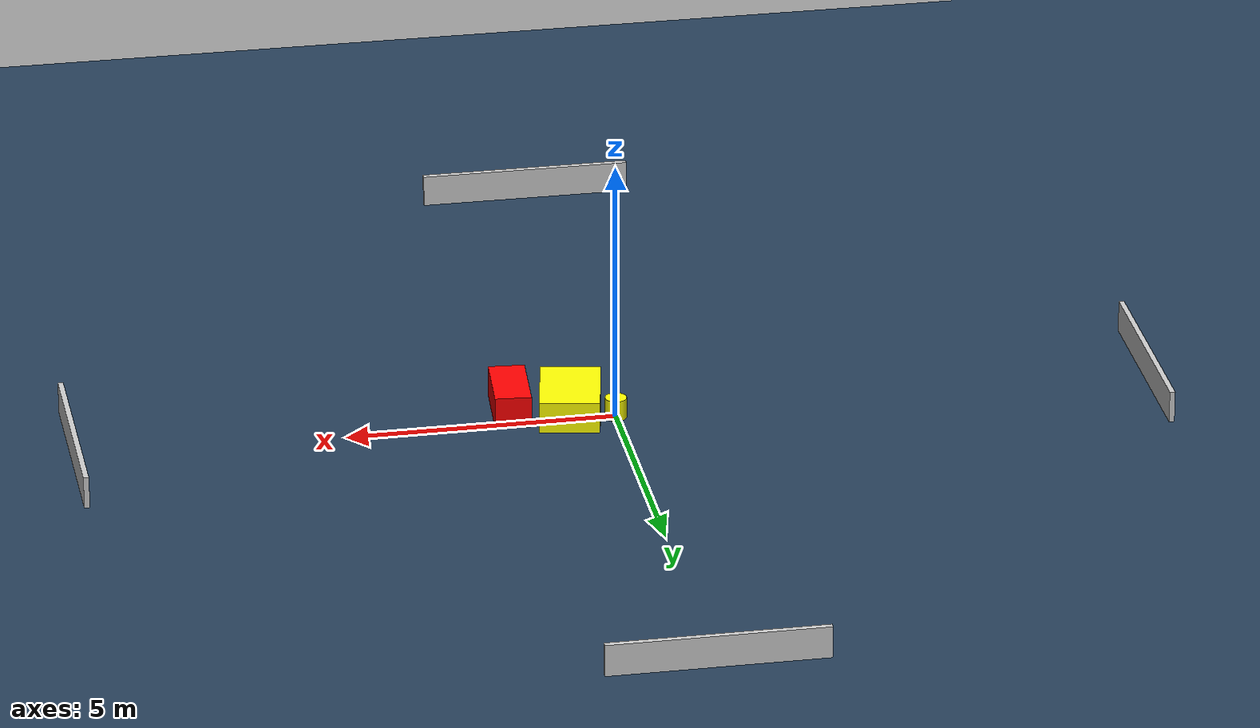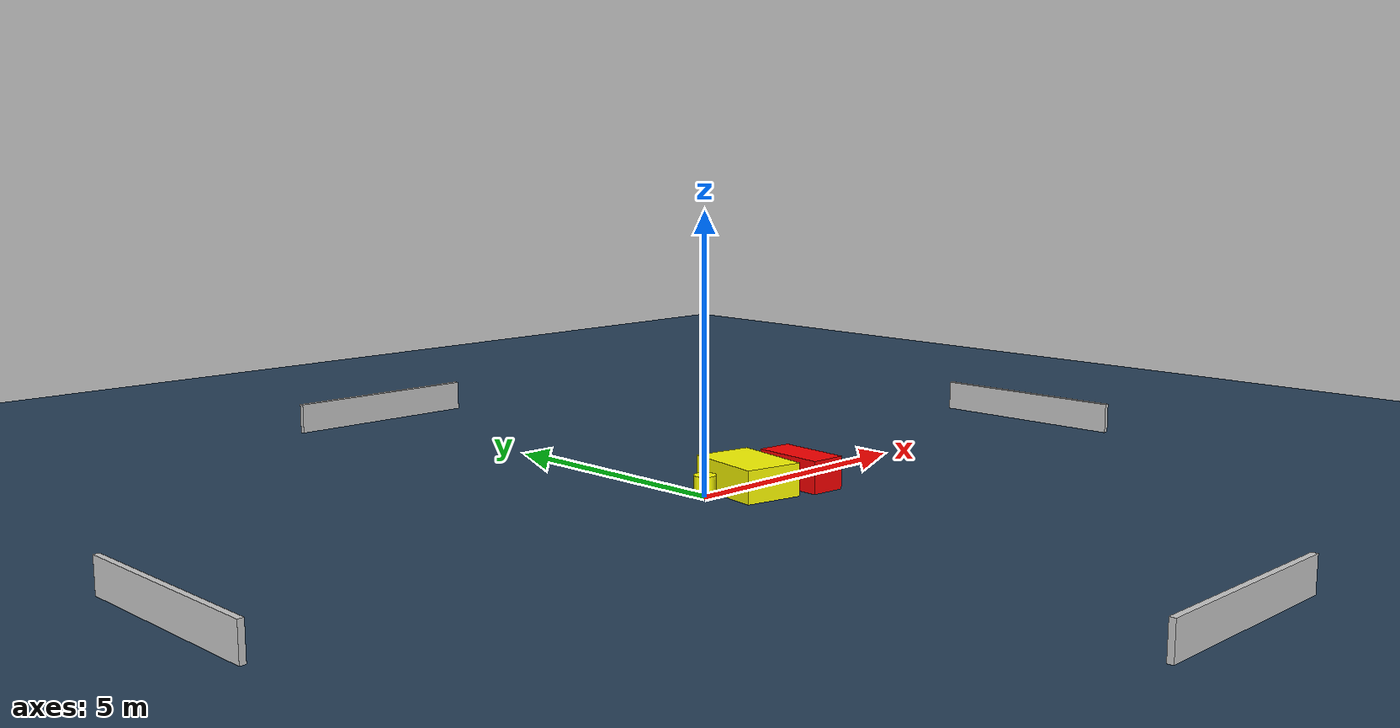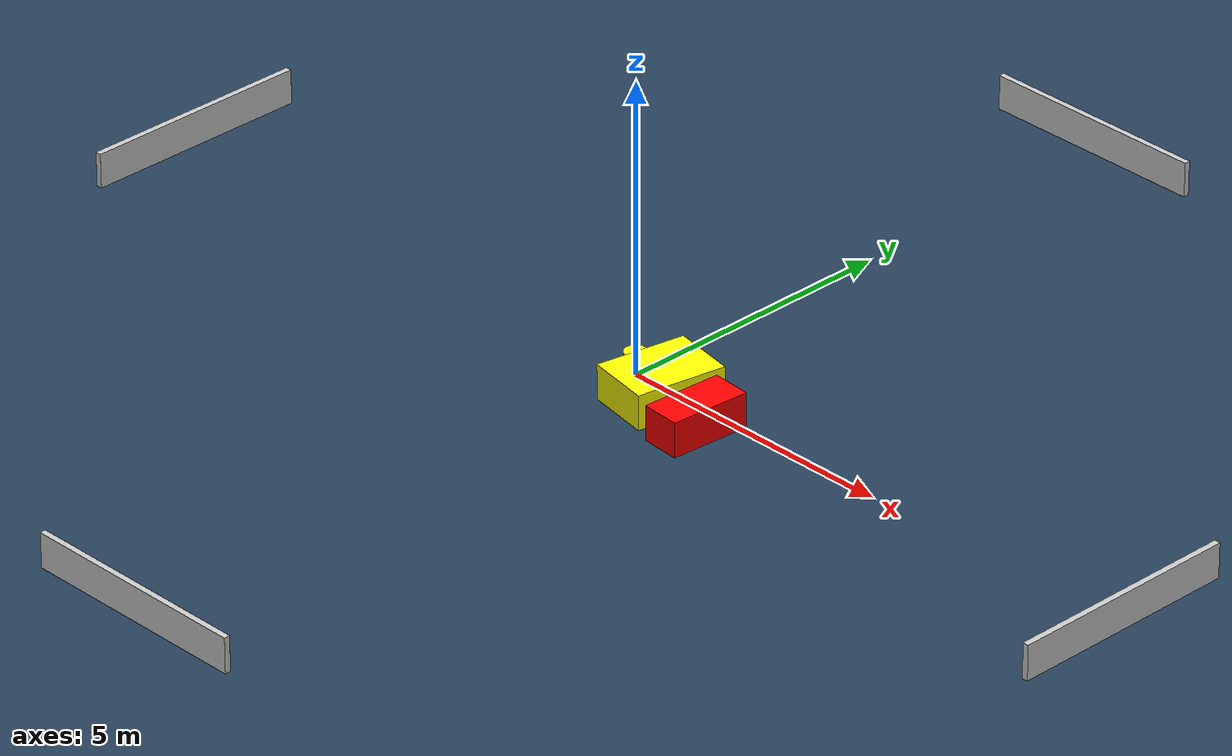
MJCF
<?xml version="1.0" ?>
<mujoco model="generated_environment">
  <option timestep="0.01" integrator="RK4" cone="elliptic"/>
  <default>
    <geom density="1"/>
  </default>
  <asset>
    <texture builtin="gradient" height="3072" name="skybox" rgb1="0.3 0.5 0.7" rgb2="0 0 0" type="skybox" width="512"/>
    <texture builtin="checker" height="300" name="groundplane" rgb1="0.2 0.3 0.4" rgb2="0.1 0.2 0.3" type="2d" width="300"/>
    <material name="groundplane" reflectance="0.2" texrepeat="5 5" texture="groundplane"/>
  </asset>
  <worldbody>
    <light dir="0 0 -1" directional="true" pos="0 0 1.5"/>
    <geom condim="3" friction="0.5 0.005 0.001" material="groundplane" name="floor" pos="0 0 0" size="0 0 0.05" type="plane"/>
    <body name="walls">
      <geom name="wall_1" condim="4" pos="-10.0 0.0 0.3" rgba="0.800000011920929 0.800000011920929 0.800000011920929 1.0" size="0.05 2.0 0.3" type="box"/>
      <geom name="wall_2" condim="4" pos="10.0 0.0 0.3" rgba="0.800000011920929 0.800000011920929 0.800000011920929 1.0" size="0.05 2.0 0.3" type="box"/>
      <geom name="wall_3" condim="4" pos="0.0 -10.0 0.3" rgba="0.800000011920929 0.800000011920929 0.800000011920929 1.0" size="2.0 0.05 0.3" type="box"/>
      <geom name="wall_4" condim="4" pos="0.0 10.0 0.3" rgba="0.800000011920929 0.800000011920929 0.800000011920929 1.0" size="2.0 0.05 0.3" type="box"/>
    </body>
    <body name="robot">
      <joint name="joint_x" type="slide" pos="0 0 0" axis="1 0 0"/>
      <joint name="joint_y" type="slide" pos="0 0 0" axis="0 1 0"/>
      <geom name="robot" type="cylinder" pos="0.0 0.0 0.2" size="0.2 0.2 0.0" mass="5.0" friction="1.0 0.005 0.0001" condim="4" rgba="1.0 1.0 0.0 1.0"/>
    </body>
    <body name="obstacle_1_movable">
      <geom name="obstacle_1_movable" condim="4" pos="0.8077348486215026 -0.2623539366633429 0.3" euler="0 0 349.6552810921715" friction="0.0 0.005 0.001" rgba="1.0 1.0 0.0 1.0" size="0.5581865238291037 0.7789131359858064 0.3" type="box" mass="0.1"/>
      <joint type="free"/>
    </body>
    <body name="obstacle_2_static">
      <geom name="obstacle_2_static" condim="4" pos="1.8753365968595799 -0.5778034691643831 0.3" euler="0 0 175.87426504842048" friction="0.0 0.005 0.001" rgba="1.0 0.0 0.0 1.0" size="0.3376579862252871 0.69502301003182 0.3" type="box"/>
    </body>
  </worldbody>
  <actuator>
    <motor name="actuator_x" joint="joint_x" gear="1" ctrlrange="-1 1"/>
    <motor name="actuator_y" joint="joint_y" gear="1" ctrlrange="-1 1"/>
  </actuator>
</mujoco>
